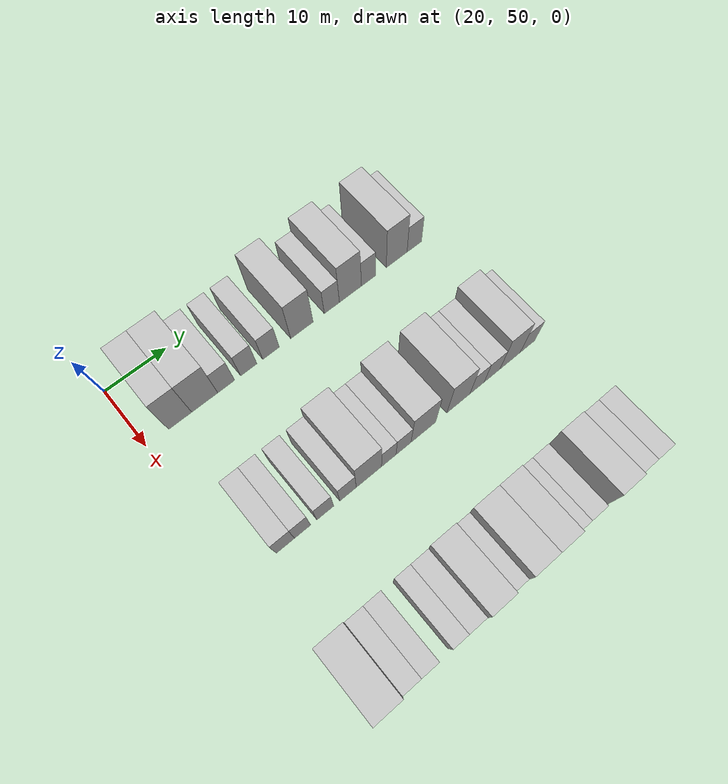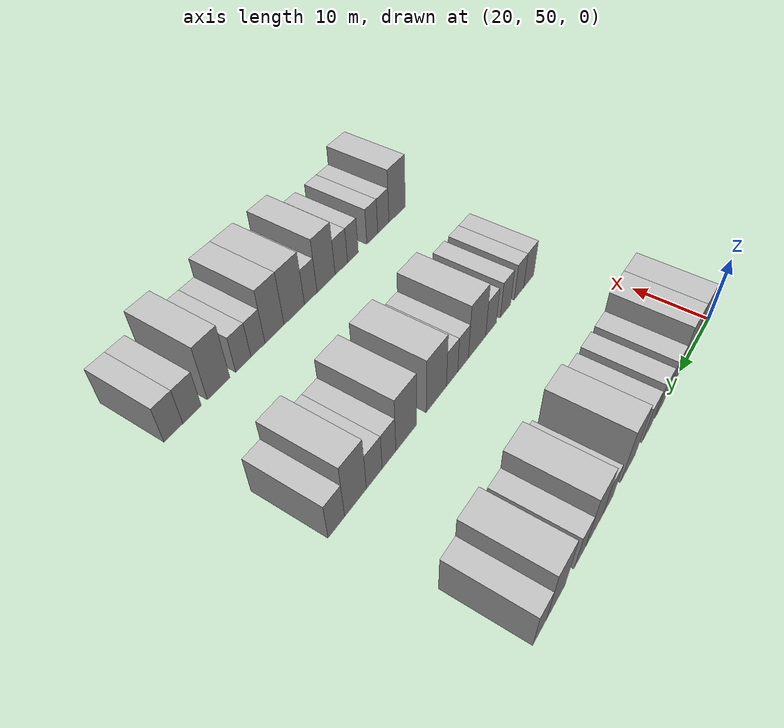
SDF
<sdf version="1.6">
 <world name="default">
  <model name="building_82">
   <static>1</static>
   <pose>25.0000 55.4530 0 0.000000 0.000000 0.000000</pose>
   <link name="link">
    <pose>0 0 4.50 0 0 0</pose>
    <collision name="collision"><geometry><box><size>10.0000 3.7066 9.0000</size></box></geometry></collision>
    <visual name="visual">
     <cast_shadows>0</cast_shadows>
     <geometry><box><size>10.0000 3.7066 9.0000</size></box></geometry>
     <material>
      <script>
       <uri>model://HANNAS_wall/materials/scripts</uri>
       <uri>model://HANNAS_wall/materials/textures</uri>
       <name>vrc/HANNAS_wall</name>
      </script>
     </material>
    </visual>
   </link>
  </model>
  <model name="building_83">
   <static>1</static>
   <pose>25.0000 59.4381 0 0.000000 0.000000 0.000000</pose>
   <link name="link">
    <pose>0 0 4.50 0 0 0</pose>
    <collision name="collision"><geometry><box><size>10.0000 4.2636 9.0000</size></box></geometry></collision>
    <visual name="visual">
     <cast_shadows>0</cast_shadows>
     <geometry><box><size>10.0000 4.2636 9.0000</size></box></geometry>
     <material>
      <script>
       <uri>model://HANNAS_wall/materials/scripts</uri>
       <uri>model://HANNAS_wall/materials/textures</uri>
       <name>vrc/HANNAS_wall</name>
      </script>
     </material>
    </visual>
   </link>
  </model>
  <model name="building_84">
   <static>1</static>
   <pose>25.0000 62.9826 0 0.000000 0.000000 0.000000</pose>
   <link name="link">
    <pose>0 0 3.00 0 0 0</pose>
    <collision name="collision"><geometry><box><size>10.0000 2.8254 6.0000</size></box></geometry></collision>
    <visual name="visual">
     <cast_shadows>0</cast_shadows>
     <geometry><box><size>10.0000 2.8254 6.0000</size></box></geometry>
     <material>
      <script>
       <uri>model://HANNAS_wall/materials/scripts</uri>
       <uri>model://HANNAS_wall/materials/textures</uri>
       <name>vrc/HANNAS_wall</name>
      </script>
     </material>
    </visual>
   </link>
  </model>
  <model name="building_85">
   <static>1</static>
   <pose>25.0000 66.7705 0 0.000000 0.000000 0.000000</pose>
   <link name="link">
    <pose>0 0 3.00 0 0 0</pose>
    <collision name="collision"><geometry><box><size>10.0000 2.7503 6.0000</size></box></geometry></collision>
    <visual name="visual">
     <cast_shadows>0</cast_shadows>
     <geometry><box><size>10.0000 2.7503 6.0000</size></box></geometry>
     <material>
      <script>
       <uri>model://HANNAS_wall/materials/scripts</uri>
       <uri>model://HANNAS_wall/materials/textures</uri>
       <name>vrc/HANNAS_wall</name>
      </script>
     </material>
    </visual>
   </link>
  </model>
  <model name="building_86">
   <static>1</static>
   <pose>25.0000 70.5676 0 0.000000 0.000000 0.000000</pose>
   <link name="link">
    <pose>0 0 3.00 0 0 0</pose>
    <collision name="collision"><geometry><box><size>10.0000 2.8439 6.0000</size></box></geometry></collision>
    <visual name="visual">
     <cast_shadows>0</cast_shadows>
     <geometry><box><size>10.0000 2.8439 6.0000</size></box></geometry>
     <material>
      <script>
       <uri>model://HANNAS_wall/materials/scripts</uri>
       <uri>model://HANNAS_wall/materials/textures</uri>
       <name>vrc/HANNAS_wall</name>
      </script>
     </material>
    </visual>
   </link>
  </model>
  <model name="building_87">
   <static>1</static>
   <pose>25.0000 75.9713 0 0.000000 0.000000 0.000000</pose>
   <link name="link">
    <pose>0 0 4.50 0 0 0</pose>
    <collision name="collision"><geometry><box><size>10.0000 3.9636 9.0000</size></box></geometry></collision>
    <visual name="visual">
     <cast_shadows>0</cast_shadows>
     <geometry><box><size>10.0000 3.9636 9.0000</size></box></geometry>
     <material>
      <script>
       <uri>model://HANNAS_wall/materials/scripts</uri>
       <uri>model://HANNAS_wall/materials/textures</uri>
       <name>vrc/HANNAS_wall</name>
      </script>
     </material>
    </visual>
   </link>
  </model>
  <model name="building_88">
   <static>1</static>
   <pose>25.0000 81.3127 0 0.000000 0.000000 0.000000</pose>
   <link name="link">
    <pose>0 0 3.00 0 0 0</pose>
    <collision name="collision"><geometry><box><size>10.0000 2.7192 6.0000</size></box></geometry></collision>
    <visual name="visual">
     <cast_shadows>0</cast_shadows>
     <geometry><box><size>10.0000 2.7192 6.0000</size></box></geometry>
     <material>
      <script>
       <uri>model://HANNAS_wall/materials/scripts</uri>
       <uri>model://HANNAS_wall/materials/textures</uri>
       <name>vrc/HANNAS_wall</name>
      </script>
     </material>
    </visual>
   </link>
  </model>
  <model name="building_89">
   <static>1</static>
   <pose>25.0000 84.6875 0 0.000000 0.000000 0.000000</pose>
   <link name="link">
    <pose>0 0 4.50 0 0 0</pose>
    <collision name="collision"><geometry><box><size>10.0000 4.0303 9.0000</size></box></geometry></collision>
    <visual name="visual">
     <cast_shadows>0</cast_shadows>
     <geometry><box><size>10.0000 4.0303 9.0000</size></box></geometry>
     <material>
      <script>
       <uri>model://HANNAS_wall/materials/scripts</uri>
       <uri>model://HANNAS_wall/materials/textures</uri>
       <name>vrc/HANNAS_wall</name>
      </script>
     </material>
    </visual>
   </link>
  </model>
  <model name="building_90">
   <static>1</static>
   <pose>25.0000 88.0320 0 0.000000 0.000000 0.000000</pose>
   <link name="link">
    <pose>0 0 3.00 0 0 0</pose>
    <collision name="collision"><geometry><box><size>10.0000 2.6586 6.0000</size></box></geometry></collision>
    <visual name="visual">
     <cast_shadows>0</cast_shadows>
     <geometry><box><size>10.0000 2.6586 6.0000</size></box></geometry>
     <material>
      <script>
       <uri>model://HANNAS_wall/materials/scripts</uri>
       <uri>model://HANNAS_wall/materials/textures</uri>
       <name>vrc/HANNAS_wall</name>
      </script>
     </material>
    </visual>
   </link>
  </model>
  <model name="building_91">
   <static>1</static>
   <pose>25.0000 93.3398 0 0.000000 0.000000 0.000000</pose>
   <link name="link">
    <pose>0 0 4.50 0 0 0</pose>
    <collision name="collision"><geometry><box><size>10.0000 3.9570 9.0000</size></box></geometry></collision>
    <visual name="visual">
     <cast_shadows>0</cast_shadows>
     <geometry><box><size>10.0000 3.9570 9.0000</size></box></geometry>
     <material>
      <script>
       <uri>model://HANNAS_wall/materials/scripts</uri>
       <uri>model://HANNAS_wall/materials/textures</uri>
       <name>vrc/HANNAS_wall</name>
      </script>
     </material>
    </visual>
   </link>
  </model>
  <model name="building_92">
   <static>1</static>
   <pose>25.0000 96.7085 0 0.000000 0.000000 0.000000</pose>
   <link name="link">
    <pose>0 0 3.00 0 0 0</pose>
    <collision name="collision"><geometry><box><size>10.0000 2.7805 6.0000</size></box></geometry></collision>
    <visual name="visual">
     <cast_shadows>0</cast_shadows>
     <geometry><box><size>10.0000 2.7805 6.0000</size></box></geometry>
     <material>
      <script>
       <uri>model://HANNAS_wall/materials/scripts</uri>
       <uri>model://HANNAS_wall/materials/textures</uri>
       <name>vrc/HANNAS_wall</name>
      </script>
     </material>
    </visual>
   </link>
  </model>
  <model name="building_201">
   <static>1</static>
   <pose>47.0000 56.1122 0 0.000000 0.000000 0.000000</pose>
   <link name="link">
    <pose>0 0 3.00 0 0 0</pose>
    <collision name="collision"><geometry><box><size>10.0000 2.8612 6.0000</size></box></geometry></collision>
    <visual name="visual">
     <cast_shadows>0</cast_shadows>
     <geometry><box><size>10.0000 2.8612 6.0000</size></box></geometry>
     <material>
      <script>
       <uri>model://HANNAS_wall/materials/scripts</uri>
       <uri>model://HANNAS_wall/materials/textures</uri>
       <name>vrc/HANNAS_wall</name>
      </script>
     </material>
    </visual>
   </link>
  </model>
  <model name="building_202">
   <static>1</static>
   <pose>47.0000 58.8248 0 0.000000 0.000000 0.000000</pose>
   <link name="link">
    <pose>0 0 3.00 0 0 0</pose>
    <collision name="collision"><geometry><box><size>10.0000 2.5639 6.0000</size></box></geometry></collision>
    <visual name="visual">
     <cast_shadows>0</cast_shadows>
     <geometry><box><size>10.0000 2.5639 6.0000</size></box></geometry>
     <material>
      <script>
       <uri>model://HANNAS_wall/materials/scripts</uri>
       <uri>model://HANNAS_wall/materials/textures</uri>
       <name>vrc/HANNAS_wall</name>
      </script>
     </material>
    </visual>
   </link>
  </model>
  <model name="building_203">
   <static>1</static>
   <pose>47.0000 62.4689 0 0.000000 0.000000 0.000000</pose>
   <link name="link">
    <pose>0 0 3.00 0 0 0</pose>
    <collision name="collision"><geometry><box><size>10.0000 2.7244 6.0000</size></box></geometry></collision>
    <visual name="visual">
     <cast_shadows>0</cast_shadows>
     <geometry><box><size>10.0000 2.7244 6.0000</size></box></geometry>
     <material>
      <script>
       <uri>model://HANNAS_wall/materials/scripts</uri>
       <uri>model://HANNAS_wall/materials/textures</uri>
       <name>vrc/HANNAS_wall</name>
      </script>
     </material>
    </visual>
   </link>
  </model>
  <model name="building_204">
   <static>1</static>
   <pose>47.0000 66.1981 0 0.000000 0.000000 0.000000</pose>
   <link name="link">
    <pose>0 0 3.00 0 0 0</pose>
    <collision name="collision"><geometry><box><size>10.0000 2.7338 6.0000</size></box></geometry></collision>
    <visual name="visual">
     <cast_shadows>0</cast_shadows>
     <geometry><box><size>10.0000 2.7338 6.0000</size></box></geometry>
     <material>
      <script>
       <uri>model://HANNAS_wall/materials/scripts</uri>
       <uri>model://HANNAS_wall/materials/textures</uri>
       <name>vrc/HANNAS_wall</name>
      </script>
     </material>
    </visual>
   </link>
  </model>
  <model name="building_205">
   <static>1</static>
   <pose>47.0000 69.6799 0 0.000000 0.000000 0.000000</pose>
   <link name="link">
    <pose>0 0 4.50 0 0 0</pose>
    <collision name="collision"><geometry><box><size>10.0000 4.2299 9.0000</size></box></geometry></collision>
    <visual name="visual">
     <cast_shadows>0</cast_shadows>
     <geometry><box><size>10.0000 4.2299 9.0000</size></box></geometry>
     <material>
      <script>
       <uri>model://HANNAS_wall/materials/scripts</uri>
       <uri>model://HANNAS_wall/materials/textures</uri>
       <name>vrc/HANNAS_wall</name>
      </script>
     </material>
    </visual>
   </link>
  </model>
  <model name="building_206">
   <static>1</static>
   <pose>47.0000 73.0305 0 0.000000 0.000000 0.000000</pose>
   <link name="link">
    <pose>0 0 3.00 0 0 0</pose>
    <collision name="collision"><geometry><box><size>10.0000 2.4712 6.0000</size></box></geometry></collision>
    <visual name="visual">
     <cast_shadows>0</cast_shadows>
     <geometry><box><size>10.0000 2.4712 6.0000</size></box></geometry>
     <material>
      <script>
       <uri>model://HANNAS_wall/materials/scripts</uri>
       <uri>model://HANNAS_wall/materials/textures</uri>
       <name>vrc/HANNAS_wall</name>
      </script>
     </material>
    </visual>
   </link>
  </model>
  <model name="building_207">
   <static>1</static>
   <pose>47.0000 75.5539 0 0.000000 0.000000 0.000000</pose>
   <link name="link">
    <pose>0 0 3.00 0 0 0</pose>
    <collision name="collision"><geometry><box><size>10.0000 2.5758 6.0000</size></box></geometry></collision>
    <visual name="visual">
     <cast_shadows>0</cast_shadows>
     <geometry><box><size>10.0000 2.5758 6.0000</size></box></geometry>
     <material>
      <script>
       <uri>model://HANNAS_wall/materials/scripts</uri>
       <uri>model://HANNAS_wall/materials/textures</uri>
       <name>vrc/HANNAS_wall</name>
      </script>
     </material>
    </visual>
   </link>
  </model>
  <model name="building_208">
   <static>1</static>
   <pose>47.0000 79.0236 0 0.000000 0.000000 0.000000</pose>
   <link name="link">
    <pose>0 0 4.50 0 0 0</pose>
    <collision name="collision"><geometry><box><size>10.0000 4.3635 9.0000</size></box></geometry></collision>
    <visual name="visual">
     <cast_shadows>0</cast_shadows>
     <geometry><box><size>10.0000 4.3635 9.0000</size></box></geometry>
     <material>
      <script>
       <uri>model://HANNAS_wall/materials/scripts</uri>
       <uri>model://HANNAS_wall/materials/textures</uri>
       <name>vrc/HANNAS_wall</name>
      </script>
     </material>
    </visual>
   </link>
  </model>
  <model name="building_209">
   <static>1</static>
   <pose>47.0000 85.2866 0 0.000000 0.000000 0.000000</pose>
   <link name="link">
    <pose>0 0 4.50 0 0 0</pose>
    <collision name="collision"><geometry><box><size>10.0000 4.1626 9.0000</size></box></geometry></collision>
    <visual name="visual">
     <cast_shadows>0</cast_shadows>
     <geometry><box><size>10.0000 4.1626 9.0000</size></box></geometry>
     <material>
      <script>
       <uri>model://HANNAS_wall/materials/scripts</uri>
       <uri>model://HANNAS_wall/materials/textures</uri>
       <name>vrc/HANNAS_wall</name>
      </script>
     </material>
    </visual>
   </link>
  </model>
  <model name="building_210">
   <static>1</static>
   <pose>47.0000 88.6798 0 0.000000 0.000000 0.000000</pose>
   <link name="link">
    <pose>0 0 3.00 0 0 0</pose>
    <collision name="collision"><geometry><box><size>10.0000 2.6237 6.0000</size></box></geometry></collision>
    <visual name="visual">
     <cast_shadows>0</cast_shadows>
     <geometry><box><size>10.0000 2.6237 6.0000</size></box></geometry>
     <material>
      <script>
       <uri>model://HANNAS_wall/materials/scripts</uri>
       <uri>model://HANNAS_wall/materials/textures</uri>
       <name>vrc/HANNAS_wall</name>
      </script>
     </material>
    </visual>
   </link>
  </model>
  <model name="building_211">
   <static>1</static>
   <pose>47.0000 91.4454 0 0.000000 0.000000 0.000000</pose>
   <link name="link">
    <pose>0 0 3.00 0 0 0</pose>
    <collision name="collision"><geometry><box><size>10.0000 2.9075 6.0000</size></box></geometry></collision>
    <visual name="visual">
     <cast_shadows>0</cast_shadows>
     <geometry><box><size>10.0000 2.9075 6.0000</size></box></geometry>
     <material>
      <script>
       <uri>model://HANNAS_wall/materials/scripts</uri>
       <uri>model://HANNAS_wall/materials/textures</uri>
       <name>vrc/HANNAS_wall</name>
      </script>
     </material>
    </visual>
   </link>
  </model>
  <model name="building_212">
   <static>1</static>
   <pose>47.0000 94.8217 0 0.000000 0.000000 0.000000</pose>
   <link name="link">
    <pose>0 0 4.50 0 0 0</pose>
    <collision name="collision"><geometry><box><size>10.0000 3.8452 9.0000</size></box></geometry></collision>
    <visual name="visual">
     <cast_shadows>0</cast_shadows>
     <geometry><box><size>10.0000 3.8452 9.0000</size></box></geometry>
     <material>
      <script>
       <uri>model://HANNAS_wall/materials/scripts</uri>
       <uri>model://HANNAS_wall/materials/textures</uri>
       <name>vrc/HANNAS_wall</name>
      </script>
     </material>
    </visual>
   </link>
  </model>
  <model name="building_213">
   <static>1</static>
   <pose>47.0000 98.1438 0 0.000000 0.000000 0.000000</pose>
   <link name="link">
    <pose>0 0 3.00 0 0 0</pose>
    <collision name="collision"><geometry><box><size>10.0000 2.7991 6.0000</size></box></geometry></collision>
    <visual name="visual">
     <cast_shadows>0</cast_shadows>
     <geometry><box><size>10.0000 2.7991 6.0000</size></box></geometry>
     <material>
      <script>
       <uri>model://HANNAS_wall/materials/scripts</uri>
       <uri>model://HANNAS_wall/materials/textures</uri>
       <name>vrc/HANNAS_wall</name>
      </script>
     </material>
    </visual>
   </link>
  </model>
  <model name="building_322">
   <static>1</static>
   <pose>69.0000 53.9767 0 0.000000 0.000000 0.000000</pose>
   <link name="link">
    <pose>0 0 4.50 0 0 0</pose>
    <collision name="collision"><geometry><box><size>10.0000 4.1861 9.0000</size></box></geometry></collision>
    <visual name="visual">
     <cast_shadows>0</cast_shadows>
     <geometry><box><size>10.0000 4.1861 9.0000</size></box></geometry>
     <material>
      <script>
       <uri>model://HANNAS_wall/materials/scripts</uri>
       <uri>model://HANNAS_wall/materials/textures</uri>
       <name>vrc/HANNAS_wall</name>
      </script>
     </material>
    </visual>
   </link>
  </model>
  <model name="building_323">
   <static>1</static>
   <pose>69.0000 57.4448 0 0.000000 0.000000 0.000000</pose>
   <link name="link">
    <pose>0 0 3.00 0 0 0</pose>
    <collision name="collision"><geometry><box><size>10.0000 2.7499 6.0000</size></box></geometry></collision>
    <visual name="visual">
     <cast_shadows>0</cast_shadows>
     <geometry><box><size>10.0000 2.7499 6.0000</size></box></geometry>
     <material>
      <script>
       <uri>model://HANNAS_wall/materials/scripts</uri>
       <uri>model://HANNAS_wall/materials/textures</uri>
       <name>vrc/HANNAS_wall</name>
      </script>
     </material>
    </visual>
   </link>
  </model>
  <model name="building_324">
   <static>1</static>
   <pose>69.0000 60.1405 0 0.000000 0.000000 0.000000</pose>
   <link name="link">
    <pose>0 0 3.00 0 0 0</pose>
    <collision name="collision"><geometry><box><size>10.0000 2.6415 6.0000</size></box></geometry></collision>
    <visual name="visual">
     <cast_shadows>0</cast_shadows>
     <geometry><box><size>10.0000 2.6415 6.0000</size></box></geometry>
     <material>
      <script>
       <uri>model://HANNAS_wall/materials/scripts</uri>
       <uri>model://HANNAS_wall/materials/textures</uri>
       <name>vrc/HANNAS_wall</name>
      </script>
     </material>
    </visual>
   </link>
  </model>
  <model name="building_325">
   <static>1</static>
   <pose>69.0000 64.6922 0 0.000000 0.000000 0.000000</pose>
   <link name="link">
    <pose>0 0 3.00 0 0 0</pose>
    <collision name="collision"><geometry><box><size>10.0000 2.4620 6.0000</size></box></geometry></collision>
    <visual name="visual">
     <cast_shadows>0</cast_shadows>
     <geometry><box><size>10.0000 2.4620 6.0000</size></box></geometry>
     <material>
      <script>
       <uri>model://HANNAS_wall/materials/scripts</uri>
       <uri>model://HANNAS_wall/materials/textures</uri>
       <name>vrc/HANNAS_wall</name>
      </script>
     </material>
    </visual>
   </link>
  </model>
  <model name="building_326">
   <static>1</static>
   <pose>69.0000 67.3125 0 0.000000 0.000000 0.000000</pose>
   <link name="link">
    <pose>0 0 3.00 0 0 0</pose>
    <collision name="collision"><geometry><box><size>10.0000 2.7784 6.0000</size></box></geometry></collision>
    <visual name="visual">
     <cast_shadows>0</cast_shadows>
     <geometry><box><size>10.0000 2.7784 6.0000</size></box></geometry>
     <material>
      <script>
       <uri>model://HANNAS_wall/materials/scripts</uri>
       <uri>model://HANNAS_wall/materials/textures</uri>
       <name>vrc/HANNAS_wall</name>
      </script>
     </material>
    </visual>
   </link>
  </model>
  <model name="building_327">
   <static>1</static>
   <pose>69.0000 70.6482 0 0.000000 0.000000 0.000000</pose>
   <link name="link">
    <pose>0 0 4.50 0 0 0</pose>
    <collision name="collision"><geometry><box><size>10.0000 3.8930 9.0000</size></box></geometry></collision>
    <visual name="visual">
     <cast_shadows>0</cast_shadows>
     <geometry><box><size>10.0000 3.8930 9.0000</size></box></geometry>
     <material>
      <script>
       <uri>model://HANNAS_wall/materials/scripts</uri>
       <uri>model://HANNAS_wall/materials/textures</uri>
       <name>vrc/HANNAS_wall</name>
      </script>
     </material>
    </visual>
   </link>
  </model>
  <model name="building_328">
   <static>1</static>
   <pose>69.0000 73.9037 0 0.000000 0.000000 0.000000</pose>
   <link name="link">
    <pose>0 0 3.00 0 0 0</pose>
    <collision name="collision"><geometry><box><size>10.0000 2.6180 6.0000</size></box></geometry></collision>
    <visual name="visual">
     <cast_shadows>0</cast_shadows>
     <geometry><box><size>10.0000 2.6180 6.0000</size></box></geometry>
     <material>
      <script>
       <uri>model://HANNAS_wall/materials/scripts</uri>
       <uri>model://HANNAS_wall/materials/textures</uri>
       <name>vrc/HANNAS_wall</name>
      </script>
     </material>
    </visual>
   </link>
  </model>
  <model name="building_329">
   <static>1</static>
   <pose>69.0000 77.2627 0 0.000000 0.000000 0.000000</pose>
   <link name="link">
    <pose>0 0 4.50 0 0 0</pose>
    <collision name="collision"><geometry><box><size>10.0000 4.0999 9.0000</size></box></geometry></collision>
    <visual name="visual">
     <cast_shadows>0</cast_shadows>
     <geometry><box><size>10.0000 4.0999 9.0000</size></box></geometry>
     <material>
      <script>
       <uri>model://HANNAS_wall/materials/scripts</uri>
       <uri>model://HANNAS_wall/materials/textures</uri>
       <name>vrc/HANNAS_wall</name>
      </script>
     </material>
    </visual>
   </link>
  </model>
  <model name="building_330">
   <static>1</static>
   <pose>69.0000 81.1264 0 0.000000 0.000000 0.000000</pose>
   <link name="link">
    <pose>0 0 4.50 0 0 0</pose>
    <collision name="collision"><geometry><box><size>10.0000 3.6277 9.0000</size></box></geometry></collision>
    <visual name="visual">
     <cast_shadows>0</cast_shadows>
     <geometry><box><size>10.0000 3.6277 9.0000</size></box></geometry>
     <material>
      <script>
       <uri>model://HANNAS_wall/materials/scripts</uri>
       <uri>model://HANNAS_wall/materials/textures</uri>
       <name>vrc/HANNAS_wall</name>
      </script>
     </material>
    </visual>
   </link>
  </model>
  <model name="building_331">
   <static>1</static>
   <pose>69.0000 84.2389 0 0.000000 0.000000 0.000000</pose>
   <link name="link">
    <pose>0 0 3.00 0 0 0</pose>
    <collision name="collision"><geometry><box><size>10.0000 2.5972 6.0000</size></box></geometry></collision>
    <visual name="visual">
     <cast_shadows>0</cast_shadows>
     <geometry><box><size>10.0000 2.5972 6.0000</size></box></geometry>
     <material>
      <script>
       <uri>model://HANNAS_wall/materials/scripts</uri>
       <uri>model://HANNAS_wall/materials/textures</uri>
       <name>vrc/HANNAS_wall</name>
      </script>
     </material>
    </visual>
   </link>
  </model>
  <model name="building_332">
   <static>1</static>
   <pose>69.0000 86.9080 0 0.000000 0.000000 0.000000</pose>
   <link name="link">
    <pose>0 0 3.00 0 0 0</pose>
    <collision name="collision"><geometry><box><size>10.0000 2.7411 6.0000</size></box></geometry></collision>
    <visual name="visual">
     <cast_shadows>0</cast_shadows>
     <geometry><box><size>10.0000 2.7411 6.0000</size></box></geometry>
     <material>
      <script>
       <uri>model://HANNAS_wall/materials/scripts</uri>
       <uri>model://HANNAS_wall/materials/textures</uri>
       <name>vrc/HANNAS_wall</name>
      </script>
     </material>
    </visual>
   </link>
  </model>
  <model name="building_333">
   <static>1</static>
   <pose>69.0000 91.1906 0 0.000000 0.000000 0.000000</pose>
   <link name="link">
    <pose>0 0 4.50 0 0 0</pose>
    <collision name="collision"><geometry><box><size>10.0000 3.8239 9.0000</size></box></geometry></collision>
    <visual name="visual">
     <cast_shadows>0</cast_shadows>
     <geometry><box><size>10.0000 3.8239 9.0000</size></box></geometry>
     <material>
      <script>
       <uri>model://HANNAS_wall/materials/scripts</uri>
       <uri>model://HANNAS_wall/materials/textures</uri>
       <name>vrc/HANNAS_wall</name>
      </script>
     </material>
    </visual>
   </link>
  </model>
  <model name="building_334">
   <static>1</static>
   <pose>69.0000 95.5839 0 0.000000 0.000000 0.000000</pose>
   <link name="link">
    <pose>0 0 3.00 0 0 0</pose>
    <collision name="collision"><geometry><box><size>10.0000 2.9628 6.0000</size></box></geometry></collision>
    <visual name="visual">
     <cast_shadows>0</cast_shadows>
     <geometry><box><size>10.0000 2.9628 6.0000</size></box></geometry>
     <material>
      <script>
       <uri>model://HANNAS_wall/materials/scripts</uri>
       <uri>model://HANNAS_wall/materials/textures</uri>
       <name>vrc/HANNAS_wall</name>
      </script>
     </material>
    </visual>
   </link>
  </model>
  <model name="building_335">
   <static>1</static>
   <pose>69.0000 98.5280 0 0.000000 0.000000 0.000000</pose>
   <link name="link">
    <pose>0 0 3.00 0 0 0</pose>
    <collision name="collision"><geometry><box><size>10.0000 2.9254 6.0000</size></box></geometry></collision>
    <visual name="visual">
     <cast_shadows>0</cast_shadows>
     <geometry><box><size>10.0000 2.9254 6.0000</size></box></geometry>
     <material>
      <script>
       <uri>model://HANNAS_wall/materials/scripts</uri>
       <uri>model://HANNAS_wall/materials/textures</uri>
       <name>vrc/HANNAS_wall</name>
      </script>
     </material>
    </visual>
   </link>
  </model>
 </world>
</sdf>
